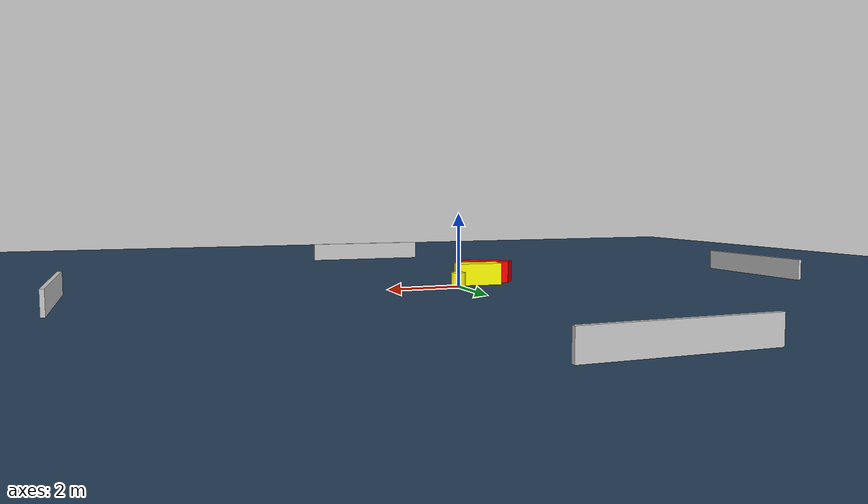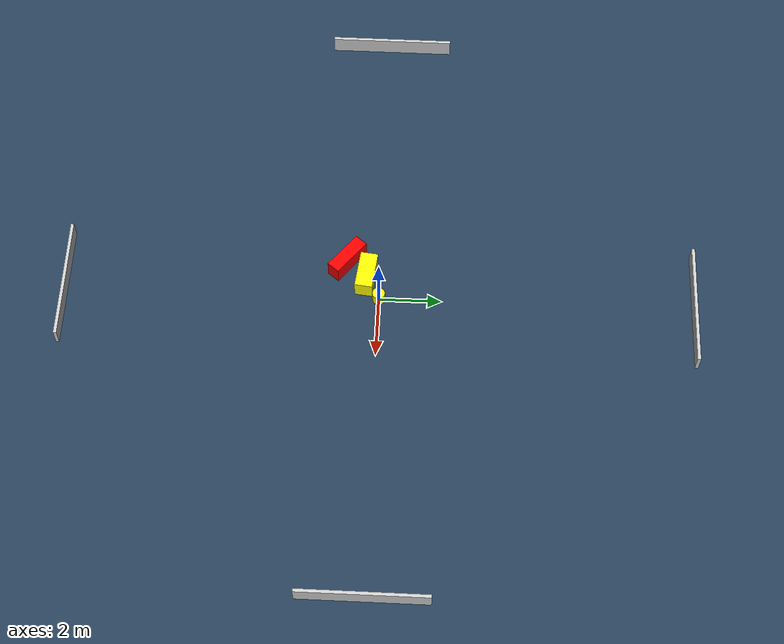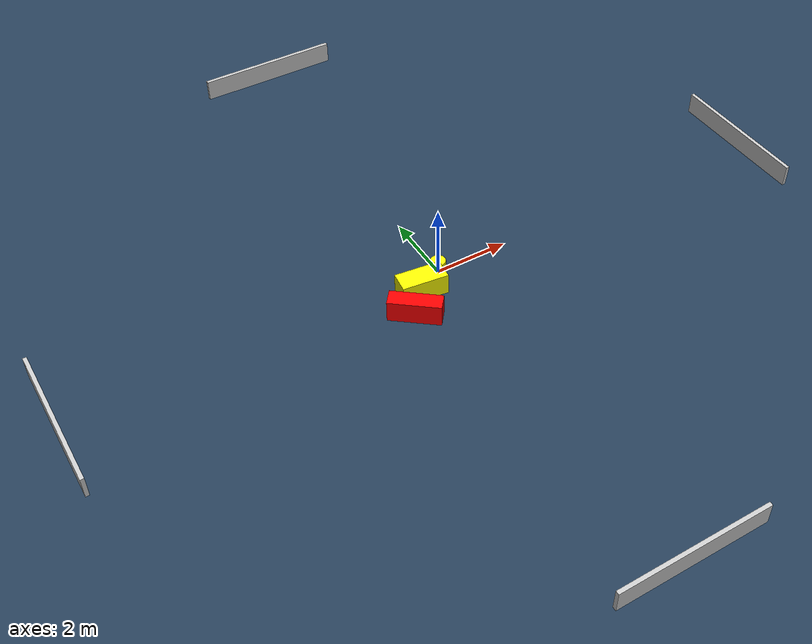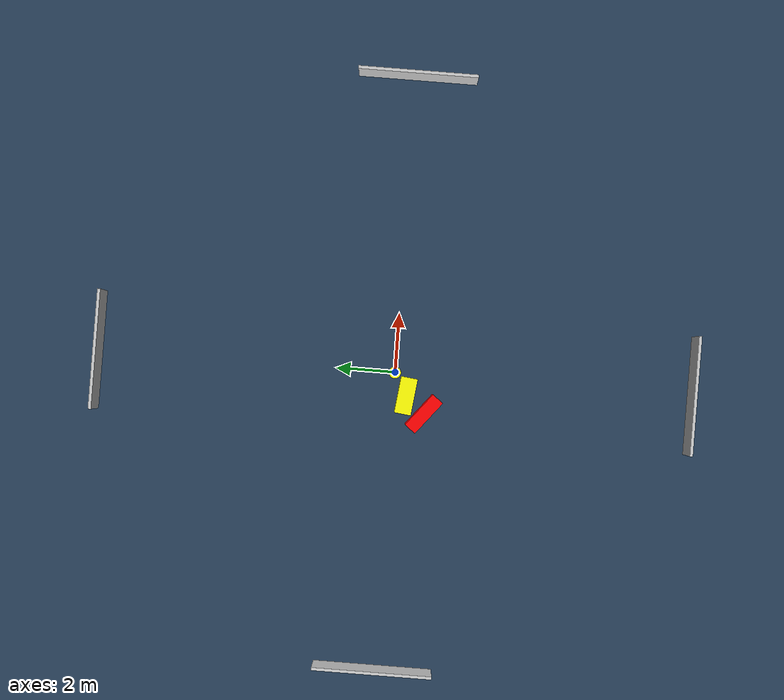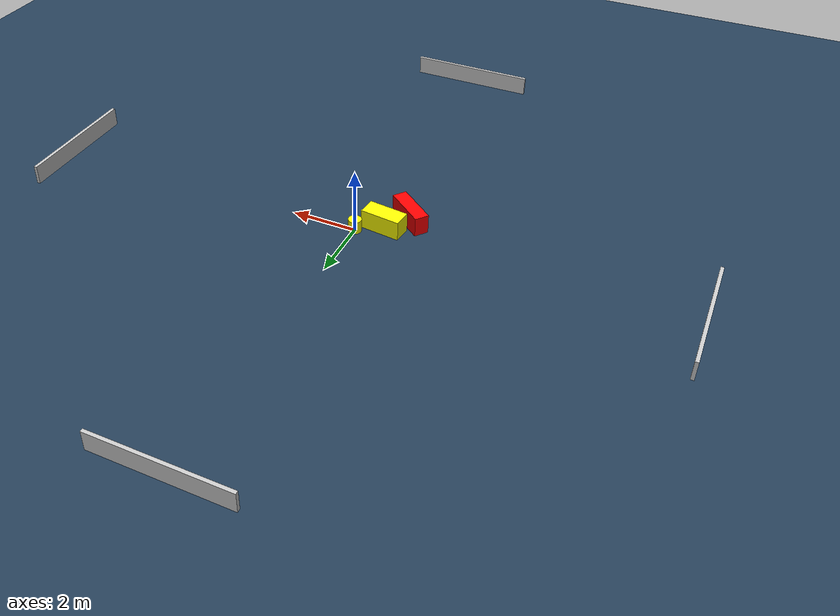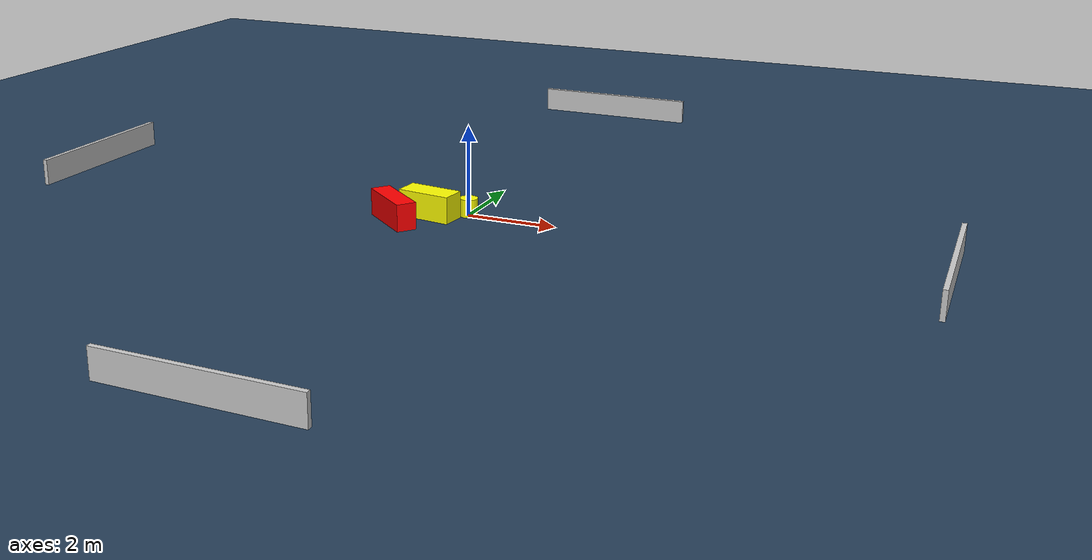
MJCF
<?xml version="1.0" ?>
<mujoco model="generated_environment">
  <option timestep="0.01" integrator="RK4" cone="elliptic"/>
  <default>
    <geom density="1"/>
  </default>
  <asset>
    <texture builtin="gradient" height="3072" name="skybox" rgb1="0.3 0.5 0.7" rgb2="0 0 0" type="skybox" width="512"/>
    <texture builtin="checker" height="300" name="groundplane" rgb1="0.2 0.3 0.4" rgb2="0.1 0.2 0.3" type="2d" width="300"/>
    <material name="groundplane" reflectance="0.2" texrepeat="5 5" texture="groundplane"/>
  </asset>
  <worldbody>
    <light dir="0 0 -1" directional="true" pos="0 0 1.5"/>
    <geom condim="3" friction="0.5 0.005 0.001" material="groundplane" name="floor" pos="0 0 0" size="0 0 0.05" type="plane"/>
    <body name="walls">
      <geom name="wall_1" condim="4" pos="-10.0 0.0 0.3" rgba="0.800000011920929 0.800000011920929 0.800000011920929 1.0" size="0.05 2.0 0.3" type="box"/>
      <geom name="wall_2" condim="4" pos="10.0 0.0 0.3" rgba="0.800000011920929 0.800000011920929 0.800000011920929 1.0" size="0.05 2.0 0.3" type="box"/>
      <geom name="wall_3" condim="4" pos="0.0 -10.0 0.3" rgba="0.800000011920929 0.800000011920929 0.800000011920929 1.0" size="2.0 0.05 0.3" type="box"/>
      <geom name="wall_4" condim="4" pos="0.0 10.0 0.3" rgba="0.800000011920929 0.800000011920929 0.800000011920929 1.0" size="2.0 0.05 0.3" type="box"/>
    </body>
    <body name="robot">
      <joint name="joint_x" type="slide" pos="0 0 0" axis="1 0 0"/>
      <joint name="joint_y" type="slide" pos="0 0 0" axis="0 1 0"/>
      <geom name="robot" type="cylinder" pos="0.0 0.0 0.2" size="0.2 0.2 0.0" mass="5.0" friction="1.0 0.005 0.0001" condim="4" rgba="1.0 1.0 0.0 1.0"/>
    </body>
    <body name="obstacle_1_movable">
      <geom name="obstacle_1_movable" condim="4" pos="-0.7420527458949668 -0.42275515704759276 0.3" euler="0 0 353.222977564086" friction="0.0 0.005 0.001" rgba="1.0 1.0 0.0 1.0" size="0.6107397413426586 0.27949549185753086 0.3" type="box" mass="0.1"/>
      <joint type="free"/>
    </body>
    <body name="obstacle_2_static">
      <geom name="obstacle_2_static" condim="4" pos="-1.2969652636850624 -1.0657733800410523 0.3" euler="0 0 141.49275615830553" friction="0.0 0.005 0.001" rgba="1.0 0.0 0.0 1.0" size="0.6815459922241933 0.21977644071225216 0.3" type="box"/>
    </body>
  </worldbody>
  <actuator>
    <motor name="actuator_x" joint="joint_x" gear="1" ctrlrange="-1 1"/>
    <motor name="actuator_y" joint="joint_y" gear="1" ctrlrange="-1 1"/>
  </actuator>
</mujoco>
